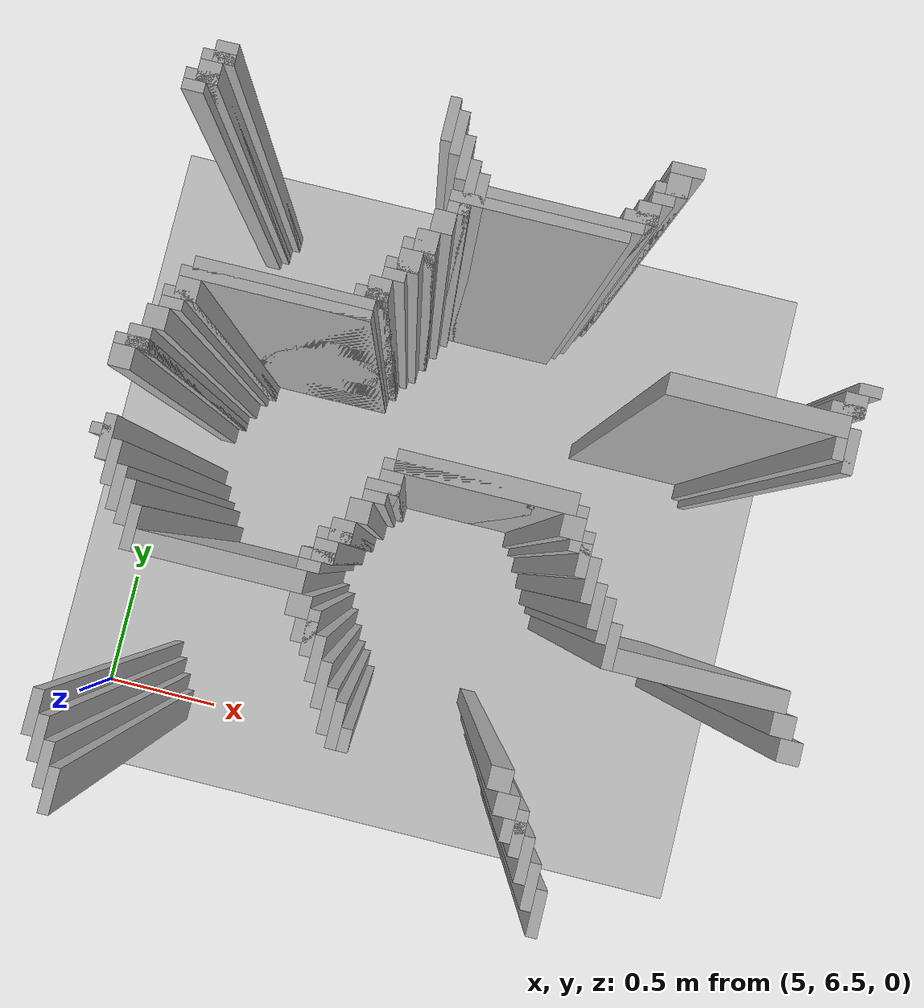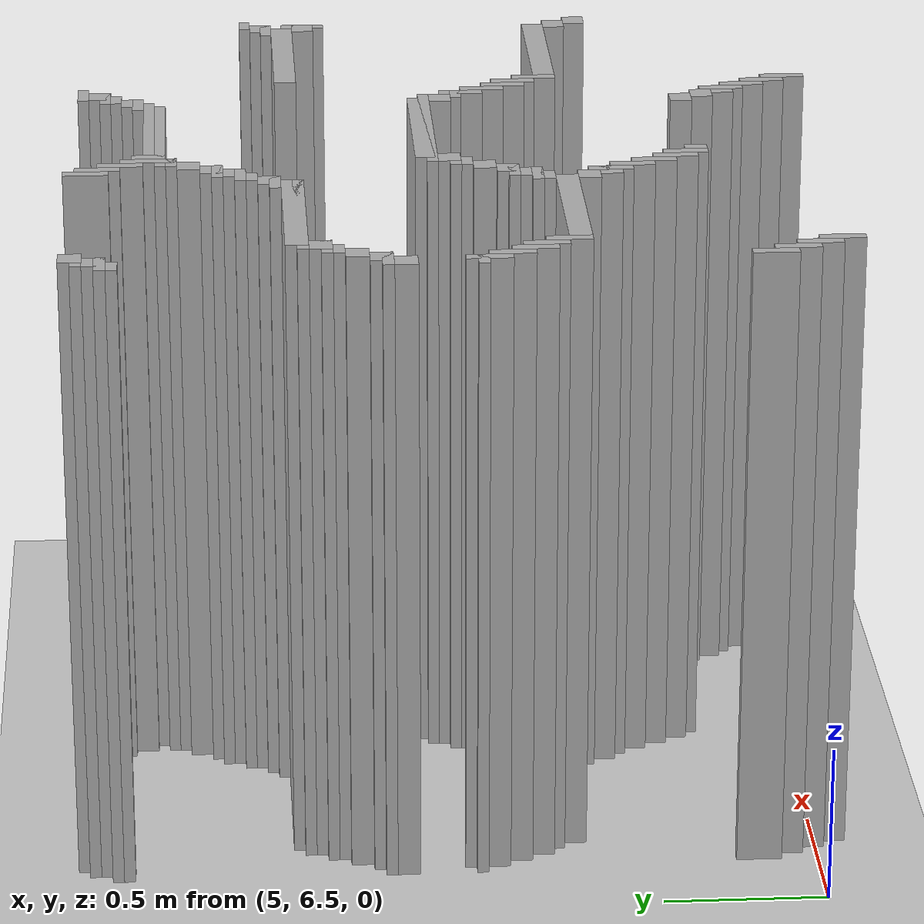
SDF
<sdf version="1.6">
 <world name="slam_world">
  <model name="ground_plane">
   <static>true</static>
   <link name="link">
    <collision name="collision">
     <geometry><plane><normal>0 0 1</normal><size>100 100</size></plane></geometry>
    </collision>
    <visual name="visual">
     <geometry><plane><normal>0 0 1</normal><size>100 100</size></plane></geometry>
     <material>
      <ambient>0.8 0.8 0.8 1</ambient>
      <diffuse>0.8 0.8 0.8 1</diffuse>
      <specular>0.8 0.8 0.8 1</specular>
     </material>
    </visual>
   </link>
  </model>
  <model name="wall_2926">
   <static>true</static>
   <pose>5.324825986078886 8.735498839907192 1.0 0 0 0</pose>
   <link name="link">
    <collision name="collision">
     <geometry><box><size>0.06960556844547564 0.06960556844547564 2.0</size></box></geometry>
    </collision>
    <visual name="visual">
     <geometry><box><size>0.06960556844547564 0.06960556844547564 2.0</size></box></geometry>
     <material><ambient>0.5 0.5 0.5 1</ambient><diffuse>0.7 0.7 0.7 1</diffuse></material>
    </visual>
   </link>
  </model>
  <model name="wall_2927">
   <static>true</static>
   <pose>6.038283062645012 8.700696055684455 1.0 0 0 0</pose>
   <link name="link">
    <collision name="collision">
     <geometry><box><size>0.03480278422273782 0.13921113689095127 2.0</size></box></geometry>
    </collision>
    <visual name="visual">
     <geometry><box><size>0.03480278422273782 0.13921113689095127 2.0</size></box></geometry>
     <material><ambient>0.5 0.5 0.5 1</ambient><diffuse>0.7 0.7 0.7 1</diffuse></material>
    </visual>
   </link>
  </model>
  <model name="wall_2941">
   <static>true</static>
   <pose>5.307424593967517 8.718097447795824 1.0 0 0 0</pose>
   <link name="link">
    <collision name="collision">
     <geometry><box><size>0.10440835266821345 0.03480278422273782 2.0</size></box></geometry>
    </collision>
    <visual name="visual">
     <geometry><box><size>0.10440835266821345 0.03480278422273782 2.0</size></box></geometry>
     <material><ambient>0.5 0.5 0.5 1</ambient><diffuse>0.7 0.7 0.7 1</diffuse></material>
    </visual>
   </link>
  </model>
  <model name="wall_2942">
   <static>true</static>
   <pose>6.073085846867749 8.665893271461716 1.0 0 0 0</pose>
   <link name="link">
    <collision name="collision">
     <geometry><box><size>0.03480278422273782 0.13921113689095127 2.0</size></box></geometry>
    </collision>
    <visual name="visual">
     <geometry><box><size>0.03480278422273782 0.13921113689095127 2.0</size></box></geometry>
     <material><ambient>0.5 0.5 0.5 1</ambient><diffuse>0.7 0.7 0.7 1</diffuse></material>
    </visual>
   </link>
  </model>
  <model name="wall_2943">
   <static>true</static>
   <pose>6.769141531322505 8.718097447795824 1.0 0 0 0</pose>
   <link name="link">
    <collision name="collision">
     <geometry><box><size>0.10440835266821345 0.03480278422273782 2.0</size></box></geometry>
    </collision>
    <visual name="visual">
     <geometry><box><size>0.10440835266821345 0.03480278422273782 2.0</size></box></geometry>
     <material><ambient>0.5 0.5 0.5 1</ambient><diffuse>0.7 0.7 0.7 1</diffuse></material>
    </visual>
   </link>
  </model>
  <model name="wall_2955">
   <static>true</static>
   <pose>5.290023201856148 8.665893271461716 1.0 0 0 0</pose>
   <link name="link">
    <collision name="collision">
     <geometry><box><size>0.06960556844547564 0.06960556844547564 2.0</size></box></geometry>
    </collision>
    <visual name="visual">
     <geometry><box><size>0.06960556844547564 0.06960556844547564 2.0</size></box></geometry>
     <material><ambient>0.5 0.5 0.5 1</ambient><diffuse>0.7 0.7 0.7 1</diffuse></material>
    </visual>
   </link>
  </model>
  <model name="wall_2956">
   <static>true</static>
   <pose>6.751740139211137 8.665893271461716 1.0 0 0 0</pose>
   <link name="link">
    <collision name="collision">
     <geometry><box><size>0.06960556844547564 0.06960556844547564 2.0</size></box></geometry>
    </collision>
    <visual name="visual">
     <geometry><box><size>0.06960556844547564 0.06960556844547564 2.0</size></box></geometry>
     <material><ambient>0.5 0.5 0.5 1</ambient><diffuse>0.7 0.7 0.7 1</diffuse></material>
    </visual>
   </link>
  </model>
  <model name="wall_2966">
   <static>true</static>
   <pose>5.27262180974478 8.648491879350347 1.0 0 0 0</pose>
   <link name="link">
    <collision name="collision">
     <geometry><box><size>0.10440835266821345 0.03480278422273782 2.0</size></box></geometry>
    </collision>
    <visual name="visual">
     <geometry><box><size>0.10440835266821345 0.03480278422273782 2.0</size></box></geometry>
     <material><ambient>0.5 0.5 0.5 1</ambient><diffuse>0.7 0.7 0.7 1</diffuse></material>
    </visual>
   </link>
  </model>
  <model name="wall_2967">
   <static>true</static>
   <pose>6.107888631090487 8.596287703016241 1.0 0 0 0</pose>
   <link name="link">
    <collision name="collision">
     <geometry><box><size>0.03480278422273782 0.13921113689095127 2.0</size></box></geometry>
    </collision>
    <visual name="visual">
     <geometry><box><size>0.03480278422273782 0.13921113689095127 2.0</size></box></geometry>
     <material><ambient>0.5 0.5 0.5 1</ambient><diffuse>0.7 0.7 0.7 1</diffuse></material>
    </visual>
   </link>
  </model>
  <model name="wall_2968">
   <static>true</static>
   <pose>6.734338747099768 8.648491879350347 1.0 0 0 0</pose>
   <link name="link">
    <collision name="collision">
     <geometry><box><size>0.10440835266821345 0.03480278422273782 2.0</size></box></geometry>
    </collision>
    <visual name="visual">
     <geometry><box><size>0.10440835266821345 0.03480278422273782 2.0</size></box></geometry>
     <material><ambient>0.5 0.5 0.5 1</ambient><diffuse>0.7 0.7 0.7 1</diffuse></material>
    </visual>
   </link>
  </model>
  <model name="wall_2979">
   <static>true</static>
   <pose>5.25522041763341 8.61368909512761 1.0 0 0 0</pose>
   <link name="link">
    <collision name="collision">
     <geometry><box><size>0.06960556844547564 0.03480278422273782 2.0</size></box></geometry>
    </collision>
    <visual name="visual">
     <geometry><box><size>0.06960556844547564 0.03480278422273782 2.0</size></box></geometry>
     <material><ambient>0.5 0.5 0.5 1</ambient><diffuse>0.7 0.7 0.7 1</diffuse></material>
    </visual>
   </link>
  </model>
  <model name="wall_2980">
   <static>true</static>
   <pose>6.716937354988398 8.61368909512761 1.0 0 0 0</pose>
   <link name="link">
    <collision name="collision">
     <geometry><box><size>0.06960556844547564 0.03480278422273782 2.0</size></box></geometry>
    </collision>
    <visual name="visual">
     <geometry><box><size>0.06960556844547564 0.03480278422273782 2.0</size></box></geometry>
     <material><ambient>0.5 0.5 0.5 1</ambient><diffuse>0.7 0.7 0.7 1</diffuse></material>
    </visual>
   </link>
  </model>
  <model name="wall_2991">
   <static>true</static>
   <pose>6.142691415313225 8.509280742459396 1.0 0 0 0</pose>
   <link name="link">
    <collision name="collision">
     <geometry><box><size>0.03480278422273782 0.17401392111368907 2.0</size></box></geometry>
    </collision>
    <visual name="visual">
     <geometry><box><size>0.03480278422273782 0.17401392111368907 2.0</size></box></geometry>
     <material><ambient>0.5 0.5 0.5 1</ambient><diffuse>0.7 0.7 0.7 1</diffuse></material>
    </visual>
   </link>
  </model>
  <model name="wall_2992">
   <static>true</static>
   <pose>6.682134570765661 8.561484918793504 1.0 0 0 0</pose>
   <link name="link">
    <collision name="collision">
     <geometry><box><size>0.06960556844547564 0.06960556844547564 2.0</size></box></geometry>
    </collision>
    <visual name="visual">
     <geometry><box><size>0.06960556844547564 0.06960556844547564 2.0</size></box></geometry>
     <material><ambient>0.5 0.5 0.5 1</ambient><diffuse>0.7 0.7 0.7 1</diffuse></material>
    </visual>
   </link>
  </model>
  <model name="wall_3006">
   <static>true</static>
   <pose>6.177494199535962 8.509280742459396 1.0 0 0 0</pose>
   <link name="link">
    <collision name="collision">
     <geometry><box><size>0.03480278422273782 0.10440835266821345 2.0</size></box></geometry>
    </collision>
    <visual name="visual">
     <geometry><box><size>0.03480278422273782 0.10440835266821345 2.0</size></box></geometry>
     <material><ambient>0.5 0.5 0.5 1</ambient><diffuse>0.7 0.7 0.7 1</diffuse></material>
    </visual>
   </link>
  </model>
  <model name="wall_3007">
   <static>true</static>
   <pose>6.664733178654292 8.544083526682135 1.0 0 0 0</pose>
   <link name="link">
    <collision name="collision">
     <geometry><box><size>0.10440835266821345 0.03480278422273782 2.0</size></box></geometry>
    </collision>
    <visual name="visual">
     <geometry><box><size>0.10440835266821345 0.03480278422273782 2.0</size></box></geometry>
     <material><ambient>0.5 0.5 0.5 1</ambient><diffuse>0.7 0.7 0.7 1</diffuse></material>
    </visual>
   </link>
  </model>
  <model name="wall_3019">
   <static>true</static>
   <pose>6.438515081206496 8.509280742459396 1.0 0 0 0</pose>
   <link name="link">
    <collision name="collision">
     <geometry><box><size>0.4872389791183295 0.03480278422273782 2.0</size></box></geometry>
    </collision>
    <visual name="visual">
     <geometry><box><size>0.4872389791183295 0.03480278422273782 2.0</size></box></geometry>
     <material><ambient>0.5 0.5 0.5 1</ambient><diffuse>0.7 0.7 0.7 1</diffuse></material>
    </visual>
   </link>
  </model>
  <model name="wall_3032">
   <static>true</static>
   <pose>6.368909512761021 8.474477958236658 1.0 0 0 0</pose>
   <link name="link">
    <collision name="collision">
     <geometry><box><size>0.5568445475638051 0.03480278422273782 2.0</size></box></geometry>
    </collision>
    <visual name="visual">
     <geometry><box><size>0.5568445475638051 0.03480278422273782 2.0</size></box></geometry>
     <material><ambient>0.5 0.5 0.5 1</ambient><diffuse>0.7 0.7 0.7 1</diffuse></material>
    </visual>
   </link>
  </model>
  <model name="wall_3047">
   <static>true</static>
   <pose>6.125290023201856 8.43967517401392 1.0 0 0 0</pose>
   <link name="link">
    <collision name="collision">
     <geometry><box><size>0.06960556844547564 0.03480278422273782 2.0</size></box></geometry>
    </collision>
    <visual name="visual">
     <geometry><box><size>0.06960556844547564 0.03480278422273782 2.0</size></box></geometry>
     <material><ambient>0.5 0.5 0.5 1</ambient><diffuse>0.7 0.7 0.7 1</diffuse></material>
    </visual>
   </link>
  </model>
  <model name="wall_3064">
   <static>true</static>
   <pose>6.090487238979118 8.387470997679815 1.0 0 0 0</pose>
   <link name="link">
    <collision name="collision">
     <geometry><box><size>0.06960556844547564 0.06960556844547564 2.0</size></box></geometry>
    </collision>
    <visual name="visual">
     <geometry><box><size>0.06960556844547564 0.06960556844547564 2.0</size></box></geometry>
     <material><ambient>0.5 0.5 0.5 1</ambient><diffuse>0.7 0.7 0.7 1</diffuse></material>
    </visual>
   </link>
  </model>
  <model name="wall_3081">
   <static>true</static>
   <pose>6.05568445475638 8.317865429234338 1.0 0 0 0</pose>
   <link name="link">
    <collision name="collision">
     <geometry><box><size>0.06960556844547564 0.06960556844547564 2.0</size></box></geometry>
    </collision>
    <visual name="visual">
     <geometry><box><size>0.06960556844547564 0.06960556844547564 2.0</size></box></geometry>
     <material><ambient>0.5 0.5 0.5 1</ambient><diffuse>0.7 0.7 0.7 1</diffuse></material>
    </visual>
   </link>
  </model>
  <model name="wall_3098">
   <static>true</static>
   <pose>6.038283062645012 8.30046403712297 1.0 0 0 0</pose>
   <link name="link">
    <collision name="collision">
     <geometry><box><size>0.10440835266821345 0.03480278422273782 2.0</size></box></geometry>
    </collision>
    <visual name="visual">
     <geometry><box><size>0.10440835266821345 0.03480278422273782 2.0</size></box></geometry>
     <material><ambient>0.5 0.5 0.5 1</ambient><diffuse>0.7 0.7 0.7 1</diffuse></material>
    </visual>
   </link>
  </model>
  <model name="wall_3114">
   <static>true</static>
   <pose>6.020881670533642 8.248259860788863 1.0 0 0 0</pose>
   <link name="link">
    <collision name="collision">
     <geometry><box><size>0.06960556844547564 0.06960556844547564 2.0</size></box></geometry>
    </collision>
    <visual name="visual">
     <geometry><box><size>0.06960556844547564 0.06960556844547564 2.0</size></box></geometry>
     <material><ambient>0.5 0.5 0.5 1</ambient><diffuse>0.7 0.7 0.7 1</diffuse></material>
    </visual>
   </link>
  </model>
  <model name="wall_3128">
   <static>true</static>
   <pose>6.003480278422273 8.230858468677495 1.0 0 0 0</pose>
   <link name="link">
    <collision name="collision">
     <geometry><box><size>0.10440835266821345 0.03480278422273782 2.0</size></box></geometry>
    </collision>
    <visual name="visual">
     <geometry><box><size>0.10440835266821345 0.03480278422273782 2.0</size></box></geometry>
     <material><ambient>0.5 0.5 0.5 1</ambient><diffuse>0.7 0.7 0.7 1</diffuse></material>
    </visual>
   </link>
  </model>
  <model name="wall_3142">
   <static>true</static>
   <pose>5.986078886310905 8.196055684454755 1.0 0 0 0</pose>
   <link name="link">
    <collision name="collision">
     <geometry><box><size>0.06960556844547564 0.03480278422273782 2.0</size></box></geometry>
    </collision>
    <visual name="visual">
     <geometry><box><size>0.06960556844547564 0.03480278422273782 2.0</size></box></geometry>
     <material><ambient>0.5 0.5 0.5 1</ambient><diffuse>0.7 0.7 0.7 1</diffuse></material>
    </visual>
   </link>
  </model>
  <model name="wall_3143">
   <static>true</static>
   <pose>7.447795823665893 8.196055684454755 1.0 0 0 0</pose>
   <link name="link">
    <collision name="collision">
     <geometry><box><size>0.06960556844547564 0.03480278422273782 2.0</size></box></geometry>
    </collision>
    <visual name="visual">
     <geometry><box><size>0.06960556844547564 0.03480278422273782 2.0</size></box></geometry>
     <material><ambient>0.5 0.5 0.5 1</ambient><diffuse>0.7 0.7 0.7 1</diffuse></material>
    </visual>
   </link>
  </model>
  <model name="wall_3154">
   <static>true</static>
   <pose>5.951276102088166 8.14385150812065 1.0 0 0 0</pose>
   <link name="link">
    <collision name="collision">
     <geometry><box><size>0.06960556844547564 0.06960556844547564 2.0</size></box></geometry>
    </collision>
    <visual name="visual">
     <geometry><box><size>0.06960556844547564 0.06960556844547564 2.0</size></box></geometry>
     <material><ambient>0.5 0.5 0.5 1</ambient><diffuse>0.7 0.7 0.7 1</diffuse></material>
    </visual>
   </link>
  </model>
  <model name="wall_3155">
   <static>true</static>
   <pose>7.412993039443156 8.14385150812065 1.0 0 0 0</pose>
   <link name="link">
    <collision name="collision">
     <geometry><box><size>0.06960556844547564 0.06960556844547564 2.0</size></box></geometry>
    </collision>
    <visual name="visual">
     <geometry><box><size>0.06960556844547564 0.06960556844547564 2.0</size></box></geometry>
     <material><ambient>0.5 0.5 0.5 1</ambient><diffuse>0.7 0.7 0.7 1</diffuse></material>
    </visual>
   </link>
  </model>
  <model name="wall_3168">
   <static>true</static>
   <pose>5.933874709976798 8.12645011600928 1.0 0 0 0</pose>
   <link name="link">
    <collision name="collision">
     <geometry><box><size>0.10440835266821345 0.03480278422273782 2.0</size></box></geometry>
    </collision>
    <visual name="visual">
     <geometry><box><size>0.10440835266821345 0.03480278422273782 2.0</size></box></geometry>
     <material><ambient>0.5 0.5 0.5 1</ambient><diffuse>0.7 0.7 0.7 1</diffuse></material>
    </visual>
   </link>
  </model>
  <model name="wall_3169">
   <static>true</static>
   <pose>7.395591647331786 8.12645011600928 1.0 0 0 0</pose>
   <link name="link">
    <collision name="collision">
     <geometry><box><size>0.10440835266821345 0.03480278422273782 2.0</size></box></geometry>
    </collision>
    <visual name="visual">
     <geometry><box><size>0.10440835266821345 0.03480278422273782 2.0</size></box></geometry>
     <material><ambient>0.5 0.5 0.5 1</ambient><diffuse>0.7 0.7 0.7 1</diffuse></material>
    </visual>
   </link>
  </model>
  <model name="wall_3183">
   <static>true</static>
   <pose>5.672853828306264 8.074245939675174 1.0 0 0 0</pose>
   <link name="link">
    <collision name="collision">
     <geometry><box><size>0.5568445475638051 0.06960556844547564 2.0</size></box></geometry>
    </collision>
    <visual name="visual">
     <geometry><box><size>0.5568445475638051 0.06960556844547564 2.0</size></box></geometry>
     <material><ambient>0.5 0.5 0.5 1</ambient><diffuse>0.7 0.7 0.7 1</diffuse></material>
    </visual>
   </link>
  </model>
  <model name="wall_3184">
   <static>true</static>
   <pose>7.134570765661253 8.074245939675174 1.0 0 0 0</pose>
   <link name="link">
    <collision name="collision">
     <geometry><box><size>0.5568445475638051 0.06960556844547564 2.0</size></box></geometry>
    </collision>
    <visual name="visual">
     <geometry><box><size>0.5568445475638051 0.06960556844547564 2.0</size></box></geometry>
     <material><ambient>0.5 0.5 0.5 1</ambient><diffuse>0.7 0.7 0.7 1</diffuse></material>
    </visual>
   </link>
  </model>
  <model name="wall_3196">
   <static>true</static>
   <pose>5.655452436194896 8.056844547563804 1.0 0 0 0</pose>
   <link name="link">
    <collision name="collision">
     <geometry><box><size>0.5916473317865429 0.03480278422273782 2.0</size></box></geometry>
    </collision>
    <visual name="visual">
     <geometry><box><size>0.5916473317865429 0.03480278422273782 2.0</size></box></geometry>
     <material><ambient>0.5 0.5 0.5 1</ambient><diffuse>0.7 0.7 0.7 1</diffuse></material>
    </visual>
   </link>
  </model>
  <model name="wall_3197">
   <static>true</static>
   <pose>7.430394431554524 8.004640371229698 1.0 0 0 0</pose>
   <link name="link">
    <collision name="collision">
     <geometry><box><size>0.03480278422273782 0.13921113689095127 2.0</size></box></geometry>
    </collision>
    <visual name="visual">
     <geometry><box><size>0.03480278422273782 0.13921113689095127 2.0</size></box></geometry>
     <material><ambient>0.5 0.5 0.5 1</ambient><diffuse>0.7 0.7 0.7 1</diffuse></material>
    </visual>
   </link>
  </model>
  <model name="wall_3209">
   <static>true</static>
   <pose>5.3944315545243615 8.004640371229698 1.0 0 0 0</pose>
   <link name="link">
    <collision name="collision">
     <geometry><box><size>0.06960556844547564 0.06960556844547564 2.0</size></box></geometry>
    </collision>
    <visual name="visual">
     <geometry><box><size>0.06960556844547564 0.06960556844547564 2.0</size></box></geometry>
     <material><ambient>0.5 0.5 0.5 1</ambient><diffuse>0.7 0.7 0.7 1</diffuse></material>
    </visual>
   </link>
  </model>
  <model name="wall_3210">
   <static>true</static>
   <pose>7.412993039443156 8.004640371229698 1.0 0 0 0</pose>
   <link name="link">
    <collision name="collision">
     <geometry><box><size>0.06960556844547564 0.06960556844547564 2.0</size></box></geometry>
    </collision>
    <visual name="visual">
     <geometry><box><size>0.06960556844547564 0.06960556844547564 2.0</size></box></geometry>
     <material><ambient>0.5 0.5 0.5 1</ambient><diffuse>0.7 0.7 0.7 1</diffuse></material>
    </visual>
   </link>
  </model>
  <model name="wall_3222">
   <static>true</static>
   <pose>5.377030162412993 7.987238979118329 1.0 0 0 0</pose>
   <link name="link">
    <collision name="collision">
     <geometry><box><size>0.10440835266821345 0.03480278422273782 2.0</size></box></geometry>
    </collision>
    <visual name="visual">
     <geometry><box><size>0.10440835266821345 0.03480278422273782 2.0</size></box></geometry>
     <material><ambient>0.5 0.5 0.5 1</ambient><diffuse>0.7 0.7 0.7 1</diffuse></material>
    </visual>
   </link>
  </model>
  <model name="wall_3233">
   <static>true</static>
   <pose>5.359628770301624 7.952436194895592 1.0 0 0 0</pose>
   <link name="link">
    <collision name="collision">
     <geometry><box><size>0.06960556844547564 0.03480278422273782 2.0</size></box></geometry>
    </collision>
    <visual name="visual">
     <geometry><box><size>0.06960556844547564 0.03480278422273782 2.0</size></box></geometry>
     <material><ambient>0.5 0.5 0.5 1</ambient><diffuse>0.7 0.7 0.7 1</diffuse></material>
    </visual>
   </link>
  </model>
  <model name="wall_3240">
   <static>true</static>
   <pose>5.324825986078886 7.900232018561485 1.0 0 0 0</pose>
   <link name="link">
    <collision name="collision">
     <geometry><box><size>0.06960556844547564 0.06960556844547564 2.0</size></box></geometry>
    </collision>
    <visual name="visual">
     <geometry><box><size>0.06960556844547564 0.06960556844547564 2.0</size></box></geometry>
     <material><ambient>0.5 0.5 0.5 1</ambient><diffuse>0.7 0.7 0.7 1</diffuse></material>
    </visual>
   </link>
  </model>
  <model name="wall_3253">
   <static>true</static>
   <pose>5.290023201856148 7.830626450116009 1.0 0 0 0</pose>
   <link name="link">
    <collision name="collision">
     <geometry><box><size>0.06960556844547564 0.06960556844547564 2.0</size></box></geometry>
    </collision>
    <visual name="visual">
     <geometry><box><size>0.06960556844547564 0.06960556844547564 2.0</size></box></geometry>
     <material><ambient>0.5 0.5 0.5 1</ambient><diffuse>0.7 0.7 0.7 1</diffuse></material>
    </visual>
   </link>
  </model>
  <model name="wall_3266">
   <static>true</static>
   <pose>5.27262180974478 7.81322505800464 1.0 0 0 0</pose>
   <link name="link">
    <collision name="collision">
     <geometry><box><size>0.10440835266821345 0.03480278422273782 2.0</size></box></geometry>
    </collision>
    <visual name="visual">
     <geometry><box><size>0.10440835266821345 0.03480278422273782 2.0</size></box></geometry>
     <material><ambient>0.5 0.5 0.5 1</ambient><diffuse>0.7 0.7 0.7 1</diffuse></material>
    </visual>
   </link>
  </model>
  <model name="wall_3277">
   <static>true</static>
   <pose>5.25522041763341 7.761020881670533 1.0 0 0 0</pose>
   <link name="link">
    <collision name="collision">
     <geometry><box><size>0.06960556844547564 0.06960556844547564 2.0</size></box></geometry>
    </collision>
    <visual name="visual">
     <geometry><box><size>0.06960556844547564 0.06960556844547564 2.0</size></box></geometry>
     <material><ambient>0.5 0.5 0.5 1</ambient><diffuse>0.7 0.7 0.7 1</diffuse></material>
    </visual>
   </link>
  </model>
  <model name="wall_3303">
   <static>true</static>
   <pose>6.403712296983758 7.65661252900232 1.0 0 0 0</pose>
   <link name="link">
    <collision name="collision">
     <geometry><box><size>0.5568445475638051 0.06960556844547564 2.0</size></box></geometry>
    </collision>
    <visual name="visual">
     <geometry><box><size>0.5568445475638051 0.06960556844547564 2.0</size></box></geometry>
     <material><ambient>0.5 0.5 0.5 1</ambient><diffuse>0.7 0.7 0.7 1</diffuse></material>
    </visual>
   </link>
  </model>
  <model name="wall_3316">
   <static>true</static>
   <pose>6.403712296983758 7.6392111368909505 1.0 0 0 0</pose>
   <link name="link">
    <collision name="collision">
     <geometry><box><size>0.6264501160092807 0.03480278422273782 2.0</size></box></geometry>
    </collision>
    <visual name="visual">
     <geometry><box><size>0.6264501160092807 0.03480278422273782 2.0</size></box></geometry>
     <material><ambient>0.5 0.5 0.5 1</ambient><diffuse>0.7 0.7 0.7 1</diffuse></material>
    </visual>
   </link>
  </model>
  <model name="wall_3330">
   <static>true</static>
   <pose>6.125290023201856 7.587006960556844 1.0 0 0 0</pose>
   <link name="link">
    <collision name="collision">
     <geometry><box><size>0.06960556844547564 0.06960556844547564 2.0</size></box></geometry>
    </collision>
    <visual name="visual">
     <geometry><box><size>0.06960556844547564 0.06960556844547564 2.0</size></box></geometry>
     <material><ambient>0.5 0.5 0.5 1</ambient><diffuse>0.7 0.7 0.7 1</diffuse></material>
    </visual>
   </link>
  </model>
  <model name="wall_3331">
   <static>true</static>
   <pose>6.682134570765661 7.587006960556844 1.0 0 0 0</pose>
   <link name="link">
    <collision name="collision">
     <geometry><box><size>0.06960556844547564 0.06960556844547564 2.0</size></box></geometry>
    </collision>
    <visual name="visual">
     <geometry><box><size>0.06960556844547564 0.06960556844547564 2.0</size></box></geometry>
     <material><ambient>0.5 0.5 0.5 1</ambient><diffuse>0.7 0.7 0.7 1</diffuse></material>
    </visual>
   </link>
  </model>
  <model name="wall_3344">
   <static>true</static>
   <pose>5.27262180974478 7.517401392111369 1.0 0 0 0</pose>
   <link name="link">
    <collision name="collision">
     <geometry><box><size>0.03480278422273782 0.13921113689095127 2.0</size></box></geometry>
    </collision>
    <visual name="visual">
     <geometry><box><size>0.03480278422273782 0.13921113689095127 2.0</size></box></geometry>
     <material><ambient>0.5 0.5 0.5 1</ambient><diffuse>0.7 0.7 0.7 1</diffuse></material>
    </visual>
   </link>
  </model>
  <model name="wall_3345">
   <static>true</static>
   <pose>6.107888631090487 7.569605568445476 1.0 0 0 0</pose>
   <link name="link">
    <collision name="collision">
     <geometry><box><size>0.10440835266821345 0.03480278422273782 2.0</size></box></geometry>
    </collision>
    <visual name="visual">
     <geometry><box><size>0.10440835266821345 0.03480278422273782 2.0</size></box></geometry>
     <material><ambient>0.5 0.5 0.5 1</ambient><diffuse>0.7 0.7 0.7 1</diffuse></material>
    </visual>
   </link>
  </model>
  <model name="wall_3346">
   <static>true</static>
   <pose>6.734338747099768 7.517401392111369 1.0 0 0 0</pose>
   <link name="link">
    <collision name="collision">
     <geometry><box><size>0.03480278422273782 0.13921113689095127 2.0</size></box></geometry>
    </collision>
    <visual name="visual">
     <geometry><box><size>0.03480278422273782 0.13921113689095127 2.0</size></box></geometry>
     <material><ambient>0.5 0.5 0.5 1</ambient><diffuse>0.7 0.7 0.7 1</diffuse></material>
    </visual>
   </link>
  </model>
  <model name="wall_3358">
   <static>true</static>
   <pose>5.25522041763341 7.534802784222737 1.0 0 0 0</pose>
   <link name="link">
    <collision name="collision">
     <geometry><box><size>0.06960556844547564 0.03480278422273782 2.0</size></box></geometry>
    </collision>
    <visual name="visual">
     <geometry><box><size>0.06960556844547564 0.03480278422273782 2.0</size></box></geometry>
     <material><ambient>0.5 0.5 0.5 1</ambient><diffuse>0.7 0.7 0.7 1</diffuse></material>
    </visual>
   </link>
  </model>
  <model name="wall_3359">
   <static>true</static>
   <pose>6.090487238979118 7.534802784222737 1.0 0 0 0</pose>
   <link name="link">
    <collision name="collision">
     <geometry><box><size>0.06960556844547564 0.03480278422273782 2.0</size></box></geometry>
    </collision>
    <visual name="visual">
     <geometry><box><size>0.06960556844547564 0.03480278422273782 2.0</size></box></geometry>
     <material><ambient>0.5 0.5 0.5 1</ambient><diffuse>0.7 0.7 0.7 1</diffuse></material>
    </visual>
   </link>
  </model>
  <model name="wall_3360">
   <static>true</static>
   <pose>6.716937354988398 7.534802784222737 1.0 0 0 0</pose>
   <link name="link">
    <collision name="collision">
     <geometry><box><size>0.06960556844547564 0.03480278422273782 2.0</size></box></geometry>
    </collision>
    <visual name="visual">
     <geometry><box><size>0.06960556844547564 0.03480278422273782 2.0</size></box></geometry>
     <material><ambient>0.5 0.5 0.5 1</ambient><diffuse>0.7 0.7 0.7 1</diffuse></material>
    </visual>
   </link>
  </model>
  <model name="wall_3369">
   <static>true</static>
   <pose>5.307424593967517 7.447795823665893 1.0 0 0 0</pose>
   <link name="link">
    <collision name="collision">
     <geometry><box><size>0.03480278422273782 0.13921113689095127 2.0</size></box></geometry>
    </collision>
    <visual name="visual">
     <geometry><box><size>0.03480278422273782 0.13921113689095127 2.0</size></box></geometry>
     <material><ambient>0.5 0.5 0.5 1</ambient><diffuse>0.7 0.7 0.7 1</diffuse></material>
    </visual>
   </link>
  </model>
  <model name="wall_3370">
   <static>true</static>
   <pose>6.05568445475638 7.48259860788863 1.0 0 0 0</pose>
   <link name="link">
    <collision name="collision">
     <geometry><box><size>0.06960556844547564 0.06960556844547564 2.0</size></box></geometry>
    </collision>
    <visual name="visual">
     <geometry><box><size>0.06960556844547564 0.06960556844547564 2.0</size></box></geometry>
     <material><ambient>0.5 0.5 0.5 1</ambient><diffuse>0.7 0.7 0.7 1</diffuse></material>
    </visual>
   </link>
  </model>
  <model name="wall_3371">
   <static>true</static>
   <pose>6.769141531322505 7.447795823665893 1.0 0 0 0</pose>
   <link name="link">
    <collision name="collision">
     <geometry><box><size>0.03480278422273782 0.13921113689095127 2.0</size></box></geometry>
    </collision>
    <visual name="visual">
     <geometry><box><size>0.03480278422273782 0.13921113689095127 2.0</size></box></geometry>
     <material><ambient>0.5 0.5 0.5 1</ambient><diffuse>0.7 0.7 0.7 1</diffuse></material>
    </visual>
   </link>
  </model>
  <model name="wall_3384">
   <static>true</static>
   <pose>5.342227378190255 7.378190255220417 1.0 0 0 0</pose>
   <link name="link">
    <collision name="collision">
     <geometry><box><size>0.03480278422273782 0.13921113689095127 2.0</size></box></geometry>
    </collision>
    <visual name="visual">
     <geometry><box><size>0.03480278422273782 0.13921113689095127 2.0</size></box></geometry>
     <material><ambient>0.5 0.5 0.5 1</ambient><diffuse>0.7 0.7 0.7 1</diffuse></material>
    </visual>
   </link>
  </model>
  <model name="wall_3385">
   <static>true</static>
   <pose>6.020881670533642 7.412993039443156 1.0 0 0 0</pose>
   <link name="link">
    <collision name="collision">
     <geometry><box><size>0.06960556844547564 0.06960556844547564 2.0</size></box></geometry>
    </collision>
    <visual name="visual">
     <geometry><box><size>0.06960556844547564 0.06960556844547564 2.0</size></box></geometry>
     <material><ambient>0.5 0.5 0.5 1</ambient><diffuse>0.7 0.7 0.7 1</diffuse></material>
    </visual>
   </link>
  </model>
  <model name="wall_3386">
   <static>true</static>
   <pose>6.803944315545244 7.378190255220417 1.0 0 0 0</pose>
   <link name="link">
    <collision name="collision">
     <geometry><box><size>0.03480278422273782 0.13921113689095127 2.0</size></box></geometry>
    </collision>
    <visual name="visual">
     <geometry><box><size>0.03480278422273782 0.13921113689095127 2.0</size></box></geometry>
     <material><ambient>0.5 0.5 0.5 1</ambient><diffuse>0.7 0.7 0.7 1</diffuse></material>
    </visual>
   </link>
  </model>
  <model name="wall_3399">
   <static>true</static>
   <pose>5.377030162412993 7.34338747099768 1.0 0 0 0</pose>
   <link name="link">
    <collision name="collision">
     <geometry><box><size>0.03480278422273782 0.13921113689095127 2.0</size></box></geometry>
    </collision>
    <visual name="visual">
     <geometry><box><size>0.03480278422273782 0.13921113689095127 2.0</size></box></geometry>
     <material><ambient>0.5 0.5 0.5 1</ambient><diffuse>0.7 0.7 0.7 1</diffuse></material>
    </visual>
   </link>
  </model>
  <model name="wall_3400">
   <static>true</static>
   <pose>6.003480278422273 7.395591647331786 1.0 0 0 0</pose>
   <link name="link">
    <collision name="collision">
     <geometry><box><size>0.10440835266821345 0.03480278422273782 2.0</size></box></geometry>
    </collision>
    <visual name="visual">
     <geometry><box><size>0.10440835266821345 0.03480278422273782 2.0</size></box></geometry>
     <material><ambient>0.5 0.5 0.5 1</ambient><diffuse>0.7 0.7 0.7 1</diffuse></material>
    </visual>
   </link>
  </model>
  <model name="wall_3401">
   <static>true</static>
   <pose>6.838747099767981 7.34338747099768 1.0 0 0 0</pose>
   <link name="link">
    <collision name="collision">
     <geometry><box><size>0.03480278422273782 0.13921113689095127 2.0</size></box></geometry>
    </collision>
    <visual name="visual">
     <geometry><box><size>0.03480278422273782 0.13921113689095127 2.0</size></box></geometry>
     <material><ambient>0.5 0.5 0.5 1</ambient><diffuse>0.7 0.7 0.7 1</diffuse></material>
    </visual>
   </link>
  </model>
  <model name="wall_3412">
   <static>true</static>
   <pose>5.986078886310905 7.34338747099768 1.0 0 0 0</pose>
   <link name="link">
    <collision name="collision">
     <geometry><box><size>0.06960556844547564 0.06960556844547564 2.0</size></box></geometry>
    </collision>
    <visual name="visual">
     <geometry><box><size>0.06960556844547564 0.06960556844547564 2.0</size></box></geometry>
     <material><ambient>0.5 0.5 0.5 1</ambient><diffuse>0.7 0.7 0.7 1</diffuse></material>
    </visual>
   </link>
  </model>
  <model name="wall_3421">
   <static>true</static>
   <pose>5.41183294663573 7.273781902552204 1.0 0 0 0</pose>
   <link name="link">
    <collision name="collision">
     <geometry><box><size>0.03480278422273782 0.13921113689095127 2.0</size></box></geometry>
    </collision>
    <visual name="visual">
     <geometry><box><size>0.03480278422273782 0.13921113689095127 2.0</size></box></geometry>
     <material><ambient>0.5 0.5 0.5 1</ambient><diffuse>0.7 0.7 0.7 1</diffuse></material>
    </visual>
   </link>
  </model>
  <model name="wall_3422">
   <static>true</static>
   <pose>5.968677494199536 7.32598607888631 1.0 0 0 0</pose>
   <link name="link">
    <collision name="collision">
     <geometry><box><size>0.10440835266821345 0.03480278422273782 2.0</size></box></geometry>
    </collision>
    <visual name="visual">
     <geometry><box><size>0.10440835266821345 0.03480278422273782 2.0</size></box></geometry>
     <material><ambient>0.5 0.5 0.5 1</ambient><diffuse>0.7 0.7 0.7 1</diffuse></material>
    </visual>
   </link>
  </model>
  <model name="wall_3423">
   <static>true</static>
   <pose>6.8735498839907185 7.273781902552204 1.0 0 0 0</pose>
   <link name="link">
    <collision name="collision">
     <geometry><box><size>0.03480278422273782 0.13921113689095127 2.0</size></box></geometry>
    </collision>
    <visual name="visual">
     <geometry><box><size>0.03480278422273782 0.13921113689095127 2.0</size></box></geometry>
     <material><ambient>0.5 0.5 0.5 1</ambient><diffuse>0.7 0.7 0.7 1</diffuse></material>
    </visual>
   </link>
  </model>
  <model name="wall_3434">
   <static>true</static>
   <pose>5.951276102088166 7.291183294663573 1.0 0 0 0</pose>
   <link name="link">
    <collision name="collision">
     <geometry><box><size>0.06960556844547564 0.03480278422273782 2.0</size></box></geometry>
    </collision>
    <visual name="visual">
     <geometry><box><size>0.06960556844547564 0.03480278422273782 2.0</size></box></geometry>
     <material><ambient>0.5 0.5 0.5 1</ambient><diffuse>0.7 0.7 0.7 1</diffuse></material>
    </visual>
   </link>
  </model>
  <model name="wall_3442">
   <static>true</static>
   <pose>5.690255220417633 7.238979118329466 1.0 0 0 0</pose>
   <link name="link">
    <collision name="collision">
     <geometry><box><size>0.5220417633410672 0.06960556844547564 2.0</size></box></geometry>
    </collision>
    <visual name="visual">
     <geometry><box><size>0.5220417633410672 0.06960556844547564 2.0</size></box></geometry>
     <material><ambient>0.5 0.5 0.5 1</ambient><diffuse>0.7 0.7 0.7 1</diffuse></material>
    </visual>
   </link>
  </model>
  <model name="wall_3443">
   <static>true</static>
   <pose>7.151972157772621 7.238979118329466 1.0 0 0 0</pose>
   <link name="link">
    <collision name="collision">
     <geometry><box><size>0.5220417633410672 0.06960556844547564 2.0</size></box></geometry>
    </collision>
    <visual name="visual">
     <geometry><box><size>0.5220417633410672 0.06960556844547564 2.0</size></box></geometry>
     <material><ambient>0.5 0.5 0.5 1</ambient><diffuse>0.7 0.7 0.7 1</diffuse></material>
    </visual>
   </link>
  </model>
  <model name="wall_3453">
   <static>true</static>
   <pose>5.951276102088166 7.16937354988399 1.0 0 0 0</pose>
   <link name="link">
    <collision name="collision">
     <geometry><box><size>0.06960556844547564 0.06960556844547564 2.0</size></box></geometry>
    </collision>
    <visual name="visual">
     <geometry><box><size>0.06960556844547564 0.06960556844547564 2.0</size></box></geometry>
     <material><ambient>0.5 0.5 0.5 1</ambient><diffuse>0.7 0.7 0.7 1</diffuse></material>
    </visual>
   </link>
  </model>
  <model name="wall_3454">
   <static>true</static>
   <pose>7.412993039443156 7.16937354988399 1.0 0 0 0</pose>
   <link name="link">
    <collision name="collision">
     <geometry><box><size>0.06960556844547564 0.06960556844547564 2.0</size></box></geometry>
    </collision>
    <visual name="visual">
     <geometry><box><size>0.06960556844547564 0.06960556844547564 2.0</size></box></geometry>
     <material><ambient>0.5 0.5 0.5 1</ambient><diffuse>0.7 0.7 0.7 1</diffuse></material>
    </visual>
   </link>
  </model>
  <model name="wall_3466">
   <static>true</static>
   <pose>6.003480278422273 7.099767981438514 1.0 0 0 0</pose>
   <link name="link">
    <collision name="collision">
     <geometry><box><size>0.03480278422273782 0.13921113689095127 2.0</size></box></geometry>
    </collision>
    <visual name="visual">
     <geometry><box><size>0.03480278422273782 0.13921113689095127 2.0</size></box></geometry>
     <material><ambient>0.5 0.5 0.5 1</ambient><diffuse>0.7 0.7 0.7 1</diffuse></material>
    </visual>
   </link>
  </model>
  <model name="wall_3479">
   <static>true</static>
   <pose>5.986078886310905 7.099767981438514 1.0 0 0 0</pose>
   <link name="link">
    <collision name="collision">
     <geometry><box><size>0.06960556844547564 0.06960556844547564 2.0</size></box></geometry>
    </collision>
    <visual name="visual">
     <geometry><box><size>0.06960556844547564 0.06960556844547564 2.0</size></box></geometry>
     <material><ambient>0.5 0.5 0.5 1</ambient><diffuse>0.7 0.7 0.7 1</diffuse></material>
    </visual>
   </link>
  </model>
  <model name="wall_3480">
   <static>true</static>
   <pose>7.447795823665893 7.099767981438514 1.0 0 0 0</pose>
   <link name="link">
    <collision name="collision">
     <geometry><box><size>0.06960556844547564 0.06960556844547564 2.0</size></box></geometry>
    </collision>
    <visual name="visual">
     <geometry><box><size>0.06960556844547564 0.06960556844547564 2.0</size></box></geometry>
     <material><ambient>0.5 0.5 0.5 1</ambient><diffuse>0.7 0.7 0.7 1</diffuse></material>
    </visual>
   </link>
  </model>
  <model name="wall_3492">
   <static>true</static>
   <pose>6.038283062645012 7.03016241299304 1.0 0 0 0</pose>
   <link name="link">
    <collision name="collision">
     <geometry><box><size>0.03480278422273782 0.13921113689095127 2.0</size></box></geometry>
    </collision>
    <visual name="visual">
     <geometry><box><size>0.03480278422273782 0.13921113689095127 2.0</size></box></geometry>
     <material><ambient>0.5 0.5 0.5 1</ambient><diffuse>0.7 0.7 0.7 1</diffuse></material>
    </visual>
   </link>
  </model>
  <model name="wall_3509">
   <static>true</static>
   <pose>6.073085846867749 6.960556844547564 1.0 0 0 0</pose>
   <link name="link">
    <collision name="collision">
     <geometry><box><size>0.03480278422273782 0.13921113689095127 2.0</size></box></geometry>
    </collision>
    <visual name="visual">
     <geometry><box><size>0.03480278422273782 0.13921113689095127 2.0</size></box></geometry>
     <material><ambient>0.5 0.5 0.5 1</ambient><diffuse>0.7 0.7 0.7 1</diffuse></material>
    </visual>
   </link>
  </model>
  <model name="wall_3526">
   <static>true</static>
   <pose>6.107888631090487 6.890951276102088 1.0 0 0 0</pose>
   <link name="link">
    <collision name="collision">
     <geometry><box><size>0.03480278422273782 0.13921113689095127 2.0</size></box></geometry>
    </collision>
    <visual name="visual">
     <geometry><box><size>0.03480278422273782 0.13921113689095127 2.0</size></box></geometry>
     <material><ambient>0.5 0.5 0.5 1</ambient><diffuse>0.7 0.7 0.7 1</diffuse></material>
    </visual>
   </link>
  </model>
  <model name="wall_3539">
   <static>true</static>
   <pose>6.142691415313225 6.85614849187935 1.0 0 0 0</pose>
   <link name="link">
    <collision name="collision">
     <geometry><box><size>0.03480278422273782 0.13921113689095127 2.0</size></box></geometry>
    </collision>
    <visual name="visual">
     <geometry><box><size>0.03480278422273782 0.13921113689095127 2.0</size></box></geometry>
     <material><ambient>0.5 0.5 0.5 1</ambient><diffuse>0.7 0.7 0.7 1</diffuse></material>
    </visual>
   </link>
  </model>
  <model name="wall_3559">
   <static>true</static>
   <pose>6.177494199535962 6.821345707656612 1.0 0 0 0</pose>
   <link name="link">
    <collision name="collision">
     <geometry><box><size>0.03480278422273782 0.06960556844547564 2.0</size></box></geometry>
    </collision>
    <visual name="visual">
     <geometry><box><size>0.03480278422273782 0.06960556844547564 2.0</size></box></geometry>
     <material><ambient>0.5 0.5 0.5 1</ambient><diffuse>0.7 0.7 0.7 1</diffuse></material>
    </visual>
   </link>
  </model>
  <model name="wall_3560">
   <static>true</static>
   <pose>6.647331786542924 6.821345707656612 1.0 0 0 0</pose>
   <link name="link">
    <collision name="collision">
     <geometry><box><size>0.06960556844547564 0.06960556844547564 2.0</size></box></geometry>
    </collision>
    <visual name="visual">
     <geometry><box><size>0.06960556844547564 0.06960556844547564 2.0</size></box></geometry>
     <material><ambient>0.5 0.5 0.5 1</ambient><diffuse>0.7 0.7 0.7 1</diffuse></material>
    </visual>
   </link>
  </model>
  <model name="wall_3580">
   <static>true</static>
   <pose>6.682134570765661 6.751740139211137 1.0 0 0 0</pose>
   <link name="link">
    <collision name="collision">
     <geometry><box><size>0.06960556844547564 0.06960556844547564 2.0</size></box></geometry>
    </collision>
    <visual name="visual">
     <geometry><box><size>0.06960556844547564 0.06960556844547564 2.0</size></box></geometry>
     <material><ambient>0.5 0.5 0.5 1</ambient><diffuse>0.7 0.7 0.7 1</diffuse></material>
    </visual>
   </link>
  </model>
  <model name="wall_3593">
   <static>true</static>
   <pose>5.27262180974478 6.682134570765661 1.0 0 0 0</pose>
   <link name="link">
    <collision name="collision">
     <geometry><box><size>0.03480278422273782 0.13921113689095127 2.0</size></box></geometry>
    </collision>
    <visual name="visual">
     <geometry><box><size>0.03480278422273782 0.13921113689095127 2.0</size></box></geometry>
     <material><ambient>0.5 0.5 0.5 1</ambient><diffuse>0.7 0.7 0.7 1</diffuse></material>
    </visual>
   </link>
  </model>
  <model name="wall_3594">
   <static>true</static>
   <pose>6.734338747099768 6.682134570765661 1.0 0 0 0</pose>
   <link name="link">
    <collision name="collision">
     <geometry><box><size>0.03480278422273782 0.13921113689095127 2.0</size></box></geometry>
    </collision>
    <visual name="visual">
     <geometry><box><size>0.03480278422273782 0.13921113689095127 2.0</size></box></geometry>
     <material><ambient>0.5 0.5 0.5 1</ambient><diffuse>0.7 0.7 0.7 1</diffuse></material>
    </visual>
   </link>
  </model>
  <model name="wall_3608">
   <static>true</static>
   <pose>6.716937354988398 6.682134570765661 1.0 0 0 0</pose>
   <link name="link">
    <collision name="collision">
     <geometry><box><size>0.06960556844547564 0.06960556844547564 2.0</size></box></geometry>
    </collision>
    <visual name="visual">
     <geometry><box><size>0.06960556844547564 0.06960556844547564 2.0</size></box></geometry>
     <material><ambient>0.5 0.5 0.5 1</ambient><diffuse>0.7 0.7 0.7 1</diffuse></material>
    </visual>
   </link>
  </model>
  <model name="wall_3621">
   <static>true</static>
   <pose>5.307424593967517 6.612529002320185 1.0 0 0 0</pose>
   <link name="link">
    <collision name="collision">
     <geometry><box><size>0.03480278422273782 0.13921113689095127 2.0</size></box></geometry>
    </collision>
    <visual name="visual">
     <geometry><box><size>0.03480278422273782 0.13921113689095127 2.0</size></box></geometry>
     <material><ambient>0.5 0.5 0.5 1</ambient><diffuse>0.7 0.7 0.7 1</diffuse></material>
    </visual>
   </link>
  </model>
  <model name="wall_3622">
   <static>true</static>
   <pose>6.769141531322505 6.612529002320185 1.0 0 0 0</pose>
   <link name="link">
    <collision name="collision">
     <geometry><box><size>0.03480278422273782 0.13921113689095127 2.0</size></box></geometry>
    </collision>
    <visual name="visual">
     <geometry><box><size>0.03480278422273782 0.13921113689095127 2.0</size></box></geometry>
     <material><ambient>0.5 0.5 0.5 1</ambient><diffuse>0.7 0.7 0.7 1</diffuse></material>
    </visual>
   </link>
  </model>
  <model name="wall_3643">
   <static>true</static>
   <pose>5.342227378190255 6.5429234338747095 1.0 0 0 0</pose>
   <link name="link">
    <collision name="collision">
     <geometry><box><size>0.03480278422273782 0.13921113689095127 2.0</size></box></geometry>
    </collision>
    <visual name="visual">
     <geometry><box><size>0.03480278422273782 0.13921113689095127 2.0</size></box></geometry>
     <material><ambient>0.5 0.5 0.5 1</ambient><diffuse>0.7 0.7 0.7 1</diffuse></material>
    </visual>
   </link>
  </model>
  <model name="wall_3644">
   <static>true</static>
   <pose>6.803944315545244 6.5429234338747095 1.0 0 0 0</pose>
   <link name="link">
    <collision name="collision">
     <geometry><box><size>0.03480278422273782 0.13921113689095127 2.0</size></box></geometry>
    </collision>
    <visual name="visual">
     <geometry><box><size>0.03480278422273782 0.13921113689095127 2.0</size></box></geometry>
     <material><ambient>0.5 0.5 0.5 1</ambient><diffuse>0.7 0.7 0.7 1</diffuse></material>
    </visual>
   </link>
  </model>
  <model name="wall_3657">
   <static>true</static>
   <pose>5.377030162412993 6.473317865429234 1.0 0 0 0</pose>
   <link name="link">
    <collision name="collision">
     <geometry><box><size>0.03480278422273782 0.13921113689095127 2.0</size></box></geometry>
    </collision>
    <visual name="visual">
     <geometry><box><size>0.03480278422273782 0.13921113689095127 2.0</size></box></geometry>
     <material><ambient>0.5 0.5 0.5 1</ambient><diffuse>0.7 0.7 0.7 1</diffuse></material>
    </visual>
   </link>
  </model>
  <model name="wall_3658">
   <static>true</static>
   <pose>6.838747099767981 6.473317865429234 1.0 0 0 0</pose>
   <link name="link">
    <collision name="collision">
     <geometry><box><size>0.03480278422273782 0.13921113689095127 2.0</size></box></geometry>
    </collision>
    <visual name="visual">
     <geometry><box><size>0.03480278422273782 0.13921113689095127 2.0</size></box></geometry>
     <material><ambient>0.5 0.5 0.5 1</ambient><diffuse>0.7 0.7 0.7 1</diffuse></material>
    </visual>
   </link>
  </model>
 </world>
</sdf>
